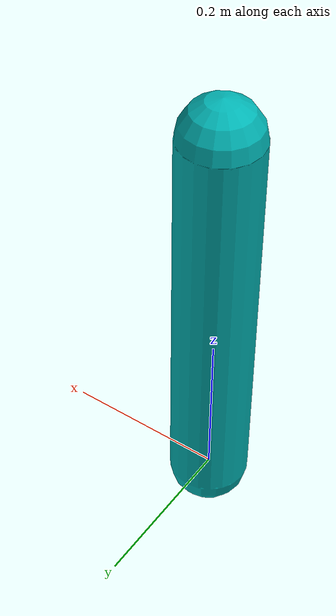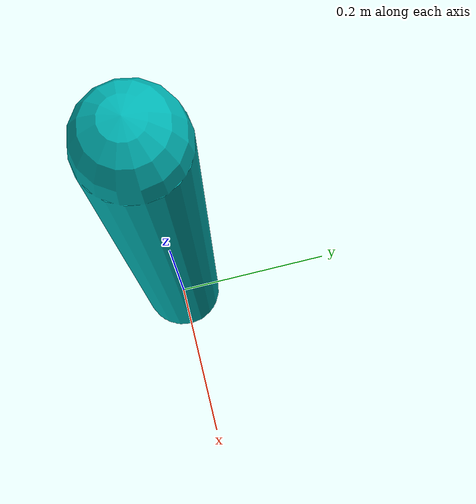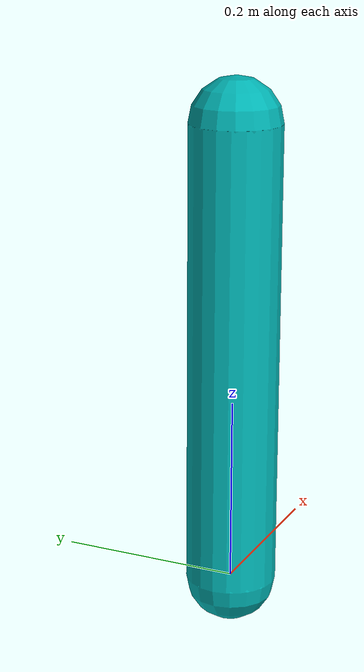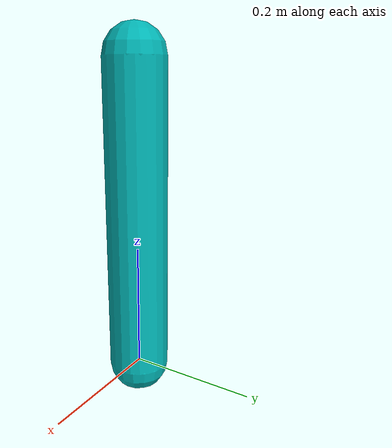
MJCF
<mujoco model="pendulum">
    <compiler inertiafromgeom="true"/>
    <default>
        <joint armature="0" damping="1" limited="true"/>
        <geom contype="0" friction="1 0.1 0.1" rgba="0.7 0.7 0 1"/>
        <tendon/>
        <motor ctrlrange="-3 3"/>
    </default>
    <option gravity="0 0 -9.81" integrator="RK4" timestep="0.02"/>
    <size nstack="3000"/>
    <worldbody>
        <body name="pole" pos="0 0 0">
            <joint axis="0 1 0" name="hinge" pos="0 0 0" damping="0" limited="false" range="-90 90" type="hinge"/>
            <geom fromto="0 0 0 0.001 0 0.5" name="cpole" rgba="0 0.7 0.7 1" size="0.049 0.3" type="capsule"/>
        </body>
    </worldbody>
    <actuator>
        <motor name="torque" joint="hinge" gear="1" ctrlrange="-1 1" ctrllimited="true"/>
    </actuator>
</mujoco>
